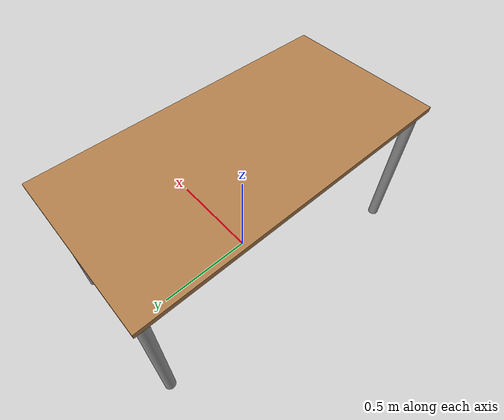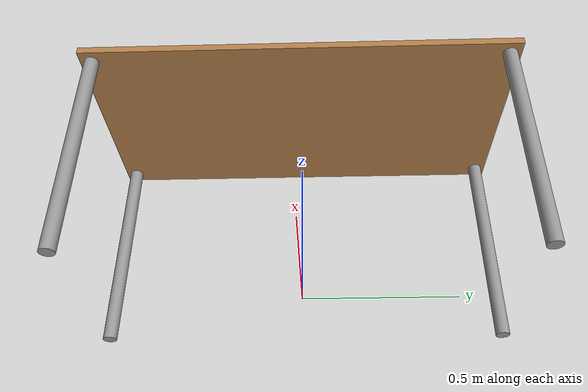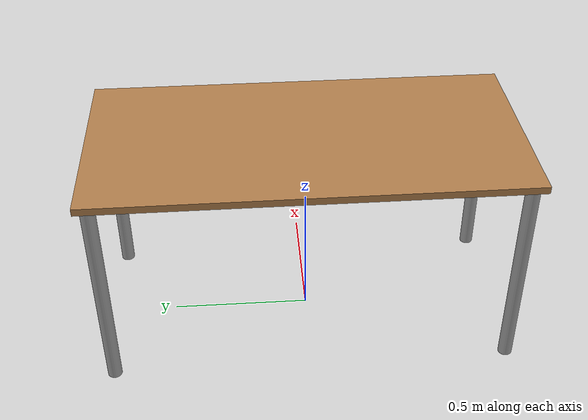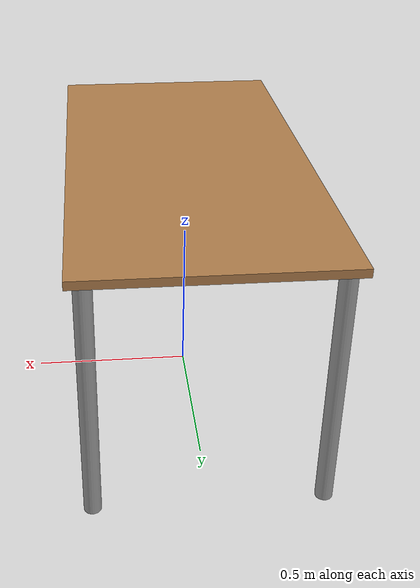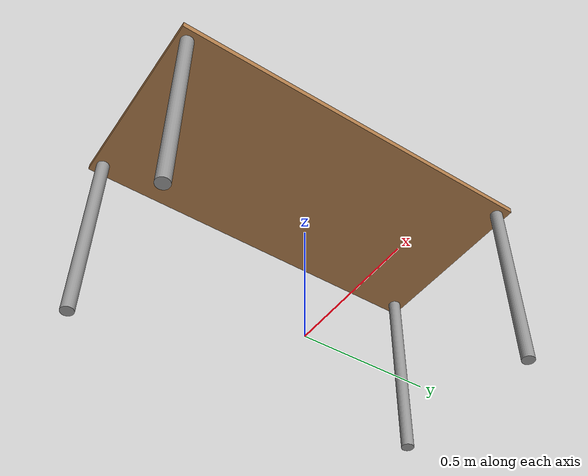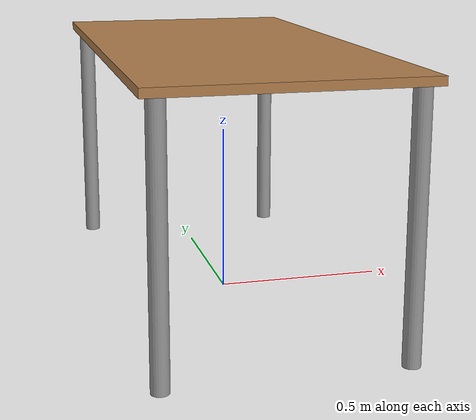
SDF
<?xml version="1.0" ?>
<sdf version="1.5">
  <model name="table_prl">
    <static>true</static>
    <link name="link">
      <collision name="surface">
        <pose>0 0 0.75 0 0 0</pose>
        <geometry>
          <box>
            <size>0.75 1.5 0.025</size>
          </box>
        </geometry>
        <surface>
          <friction>
            <ode>
              <mu>0.6</mu>
              <mu2>0.6</mu2>
            </ode>
          </friction>
        </surface>
      </collision>
      <visual name="visual1">
        <pose>0 0 0.75 0 0 0</pose>
        <geometry>
          <box>
            <size>0.75 1.5 0.025</size>
          </box>
        </geometry>
        <material>
          <script>
            <uri>file://media/materials/scripts/gazebo.material</uri>
            <name>Gazebo/Wood</name>
          </script>
        </material>
      </visual>
      <collision name="front_left_leg">
        <pose>0.33 0.71 0.37 0 0 0</pose>
        <geometry>
          <cylinder>
            <radius>0.025</radius>
            <length>0.74</length>
          </cylinder>
        </geometry>
      </collision>
      <visual name="front_left_leg">
        <pose>0.33 0.71 0.37 0 0 0</pose>
        <geometry>
          <cylinder>
            <radius>0.025</radius>
            <length>0.74</length>
          </cylinder>
        </geometry>
        <material>
          <script>
            <uri>file://media/materials/scripts/gazebo.material</uri>
            <name>Gazebo/Grey</name>
          </script>
        </material>
      </visual>
      <collision name="front_right_leg">
        <pose>0.33 -0.71 0.37 0 0 0</pose>
        <geometry>
          <cylinder>
            <radius>0.025</radius>
            <length>0.74</length>
          </cylinder>
        </geometry>
      </collision>
      <visual name="front_right_leg">
        <pose>0.33 -0.71 0.37 0 0 0</pose>
        <geometry>
          <cylinder>
            <radius>0.025</radius>
            <length>0.74</length>
          </cylinder>
        </geometry>
        <material>
          <script>
            <uri>file://media/materials/scripts/gazebo.material</uri>
            <name>Gazebo/Grey</name>
          </script>
        </material>
      </visual>
      <collision name="back_right_leg">
        <pose>-0.33 -0.71 0.37 0 0 0</pose>
        <geometry>
          <cylinder>
            <radius>0.025</radius>
            <length>0.74</length>
          </cylinder>
        </geometry>
      </collision>
      <visual name="back_right_leg">
        <pose>-0.33 -0.71 0.37 0 0 0</pose>
        <geometry>
          <cylinder>
            <radius>0.025</radius>
            <length>0.74</length>
          </cylinder>
        </geometry>
        <material>
          <script>
            <uri>file://media/materials/scripts/gazebo.material</uri>
            <name>Gazebo/Grey</name>
          </script>
        </material>
      </visual>
      <collision name="back_left_leg">
        <pose>-0.33 0.71 0.37 0 0 0</pose>
        <geometry>
          <cylinder>
            <radius>0.025</radius>
            <length>0.74</length>
          </cylinder>
        </geometry>
      </collision>
      <visual name="back_left_leg">
        <pose>-0.33 0.71 0.37 0 0 0</pose>
        <geometry>
          <cylinder>
            <radius>0.025</radius>
            <length>0.74</length>
          </cylinder>
        </geometry>
        <material>
          <script>
            <uri>file://media/materials/scripts/gazebo.material</uri>
            <name>Gazebo/Grey</name>
          </script>
        </material>
      </visual>
    </link>
  </model>
</sdf>
